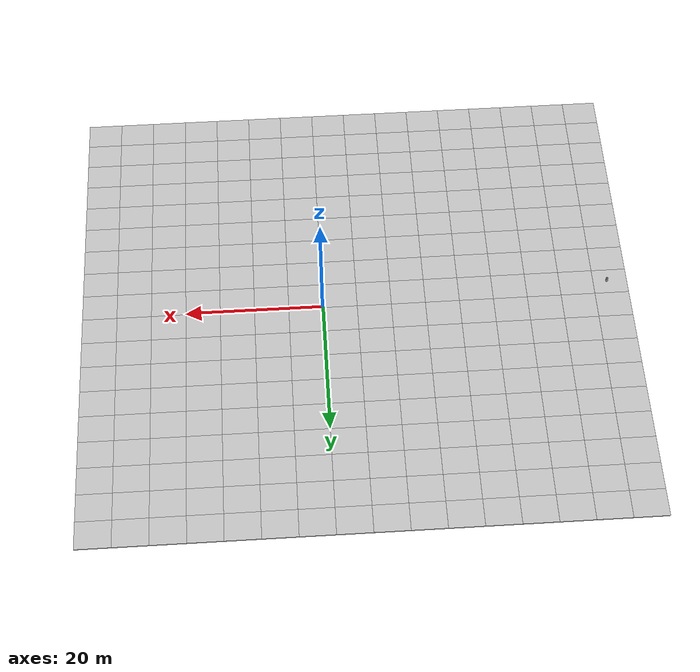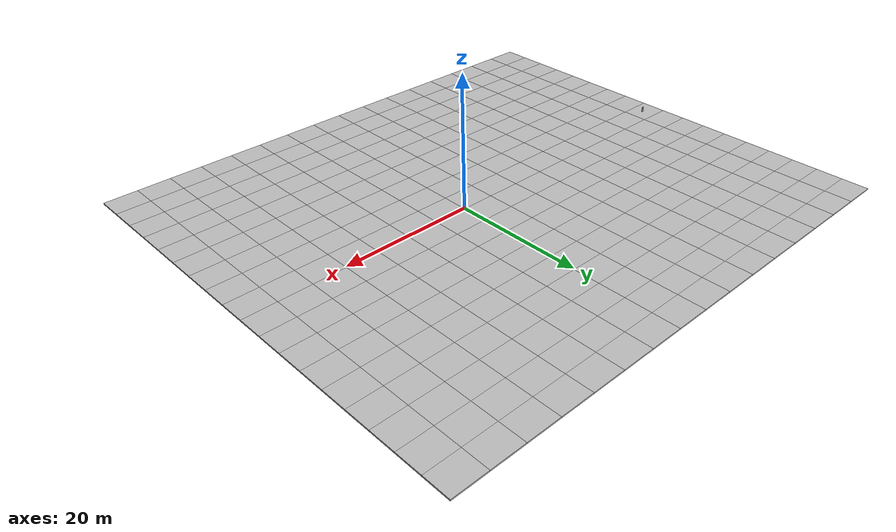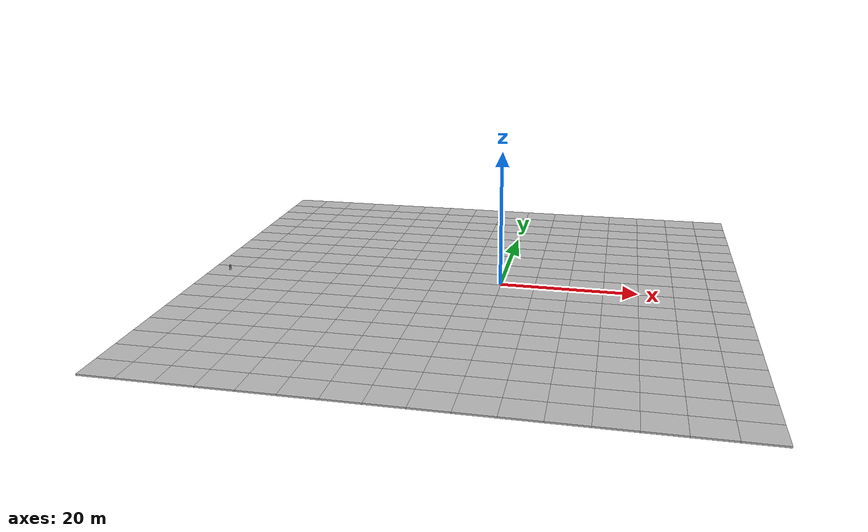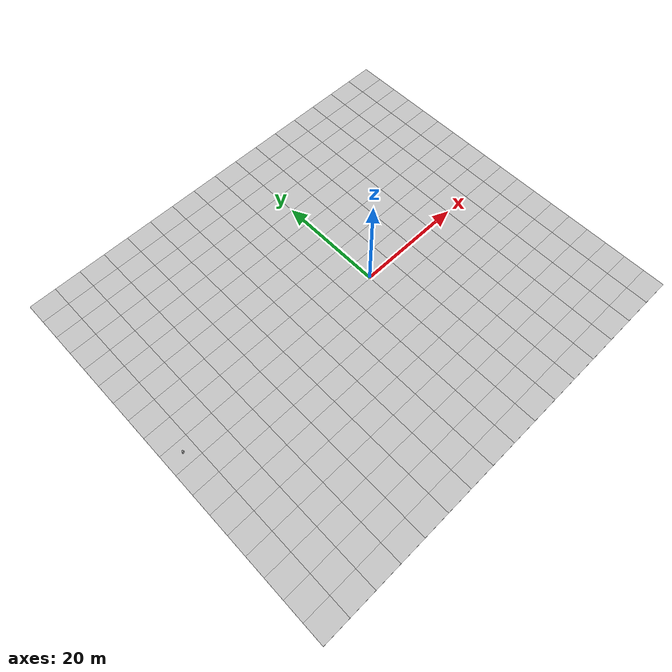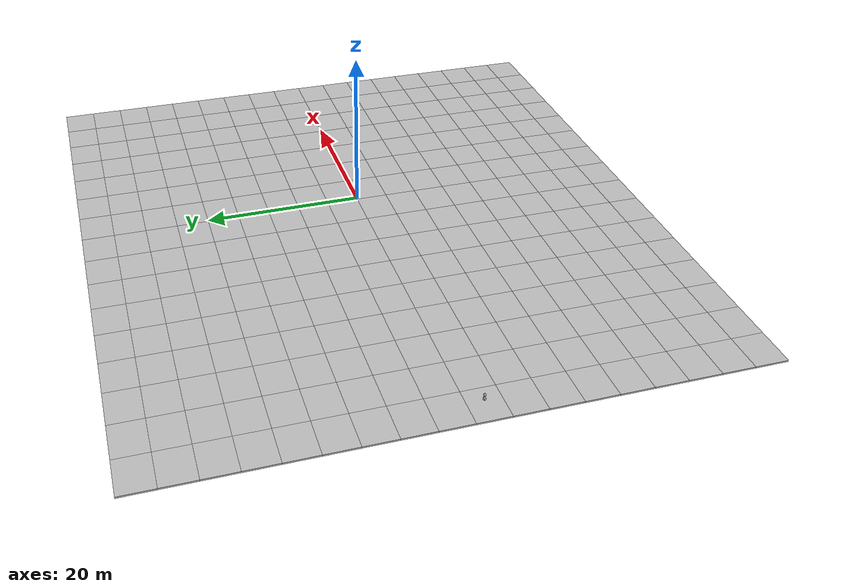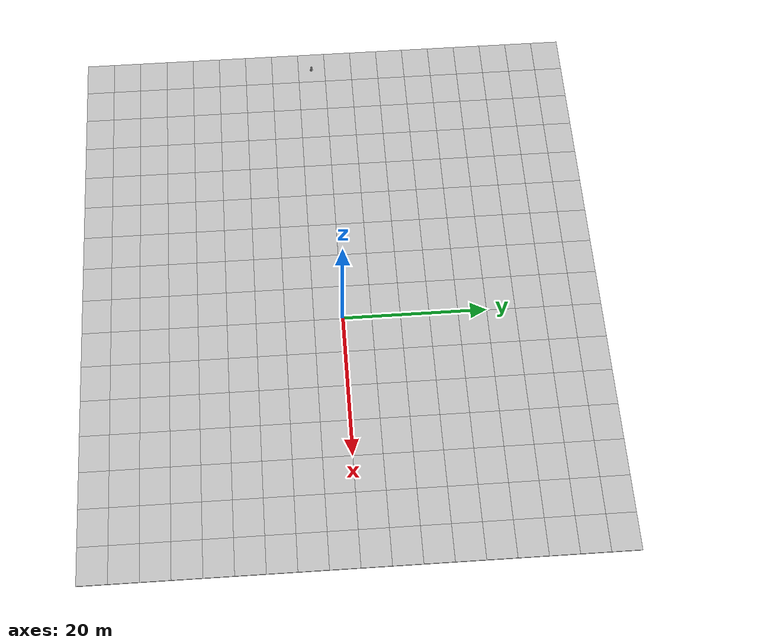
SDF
<sdf version="1.5">
 <world name="default">
  <include><uri>model://sun</uri></include>
  <physics name="default_physics" default="0" type="ode">
   <gravity>0 0 -9.8066</gravity>
   <ode>
    <solver>
     <type>quick</type>
     <iters>10</iters>
     <sor>1.3</sor>
     <use_dynamic_moi_rescaling>0</use_dynamic_moi_rescaling>
    </solver>
    <constraints>
     <cfm>0</cfm>
     <erp>0.2</erp>
     <contact_max_correcting_vel>100</contact_max_correcting_vel>
     <contact_surface_layer>0.001</contact_surface_layer>
    </constraints>
   </ode>
   <max_step_size>0.004</max_step_size>
   <real_time_factor>1</real_time_factor>
   <real_time_update_rate>250</real_time_update_rate>
   <magnetic_field>6.0e-6 2.3e-5 -4.2e-5</magnetic_field>
  </physics>
  <include><name>Oak Tree1</name><uri>model://fire_hydrant</uri><pose>-42 -2 0 0 0 0</pose></include>
  <include><name>soil box0</name><uri>model://mud_box</uri><pose>0 0 -0.2 0 0 1.5708</pose></include>
  <include><name>soil box1</name><uri>model://mud_box</uri><pose>0 8 -0.2 0 0 1.5708</pose></include>
  <include><name>soil box2</name><uri>model://mud_box</uri><pose>0 -8 -0.2 0 0 1.5708</pose></include>
  <include><name>soil box3</name><uri>model://mud_box</uri><pose>-10 0 -0.2 0 0 1.5708</pose></include>
  <include><name>soil box4</name><uri>model://mud_box</uri><pose>-10 8 -0.2 0 0 1.5708</pose></include>
  <include><name>soil box5</name><uri>model://mud_box</uri><pose>-10 -8 -0.2 0 0 1.5708</pose></include>
  <include><name>soil box6</name><uri>model://mud_box</uri><pose>10 -8 -0.2 0 0 1.5708</pose></include>
  <include><name>soil box7</name><uri>model://mud_box</uri><pose>10 0 -0.2 0 0 1.5708</pose></include>
  <include><name>soil box8</name><uri>model://mud_box</uri><pose>10 8 -0.2 0 0 1.5708</pose></include>
  <include><name>soil box9</name><uri>model://mud_box</uri><pose>20 -16 -0.2 0 0 1.5708</pose></include>
  <include><name>soil box10</name><uri>model://mud_box</uri><pose>10 -16 -0.2 0 0 1.5708</pose></include>
  <include><name>soil box11</name><uri>model://mud_box</uri><pose>-10 -16 -0.2 0 0 1.5708</pose></include>
  <include><name>soil box12</name><uri>model://mud_box</uri><pose>-20 -16 -0.2 0 0 1.5708</pose></include>
  <include><name>soil box13</name><uri>model://mud_box</uri><pose>20 16 -0.2 0 0 1.5708</pose></include>
  <include><name>soil box14</name><uri>model://mud_box</uri><pose>10 16 -0.2 0 0 1.5708</pose></include>
  <include><name>soil box15</name><uri>model://mud_box</uri><pose>0 16 -0.2 0 0 1.5708</pose></include>
  <include><name>soil box16</name><uri>model://mud_box</uri><pose>-10 16 -0.2 0 0 1.5708</pose></include>
  <include><name>soil box17</name><uri>model://mud_box</uri><pose>-20 16 -0.2 0 0 1.5708</pose></include>
  <include><name>soil box18</name><uri>model://mud_box</uri><pose>20 -8 -0.2 0 0 1.5708</pose></include>
  <include><name>soil box19</name><uri>model://mud_box</uri><pose>20 0 -0.2 0 0 1.5708</pose></include>
  <include><name>soil box20</name><uri>model://mud_box</uri><pose>20 8 -0.2 0 0 1.5708</pose></include>
  <include><name>soil box21</name><uri>model://mud_box</uri><pose>-20 -8 -0.2 0 0 1.5708</pose></include>
  <include><name>soil box22</name><uri>model://mud_box</uri><pose>-20 0 -0.2 0 0 1.5708</pose></include>
  <include><name>soil box23</name><uri>model://mud_box</uri><pose>-20 8 -0.2 0 0 1.5708</pose></include>
  <include><name>soil box24</name><uri>model://mud_box</uri><pose>0 -16 -0.2 0 0 1.5708</pose></include>
  <include><name>soil box25</name><uri>model://mud_box</uri><pose>30 -24 -0.2 0 0 1.5708</pose></include>
  <include><name>soil box26</name><uri>model://mud_box</uri><pose>30 -16 -0.2 0 0 1.5708</pose></include>
  <include><name>soil box27</name><uri>model://mud_box</uri><pose>30 -8 -0.2 0 0 1.5708</pose></include>
  <include><name>soil box28</name><uri>model://mud_box</uri><pose>30 0 -0.2 0 0 1.5708</pose></include>
  <include><name>soil box29</name><uri>model://mud_box</uri><pose>30 8 -0.2 0 0 1.5708</pose></include>
  <include><name>soil box30</name><uri>model://mud_box</uri><pose>30 16 -0.2 0 0 1.5708</pose></include>
  <include><name>soil box31</name><uri>model://mud_box</uri><pose>30 24 -0.2 0 0 1.5708</pose></include>
  <include><name>soil box32</name><uri>model://mud_box</uri><pose>-30 -24 -0.2 0 0 1.5708</pose></include>
  <include><name>soil box33</name><uri>model://mud_box</uri><pose>-30 -16 -0.2 0 0 1.5708</pose></include>
  <include><name>soil box34</name><uri>model://mud_box</uri><pose>-30 -8 -0.2 0 0 1.5708</pose></include>
  <include><name>soil box35</name><uri>model://mud_box</uri><pose>-30 0 -0.2 0 0 1.5708</pose></include>
  <include><name>soil box36</name><uri>model://mud_box</uri><pose>-30 8 -0.2 0 0 1.5708</pose></include>
  <include><name>soil box37</name><uri>model://mud_box</uri><pose>-30 16 -0.2 0 0 1.5708</pose></include>
  <include><name>soil box38</name><uri>model://mud_box</uri><pose>-30 24 -0.2 0 0 1.5708</pose></include>
  <include><name>soil box39</name><uri>model://mud_box</uri><pose>20 -24 -0.2 0 0 1.5708</pose></include>
  <include><name>soil box40</name><uri>model://mud_box</uri><pose>10 -24 -0.2 0 0 1.5708</pose></include>
  <include><name>soil box41</name><uri>model://mud_box</uri><pose>0 -24 -0.2 0 0 1.5708</pose></include>
  <include><name>soil box42</name><uri>model://mud_box</uri><pose>-10 -24 -0.2 0 0 1.5708</pose></include>
  <include><name>soil box43</name><uri>model://mud_box</uri><pose>-20 -24 -0.2 0 0 1.5708</pose></include>
  <include><name>soil box44</name><uri>model://mud_box</uri><pose>20 24 -0.2 0 0 1.5708</pose></include>
  <include><name>soil box45</name><uri>model://mud_box</uri><pose>10 24 -0.2 0 0 1.5708</pose></include>
  <include><name>soil box46</name><uri>model://mud_box</uri><pose>0 24 -0.2 0 0 1.5708</pose></include>
  <include><name>soil box47</name><uri>model://mud_box</uri><pose>-10 24 -0.2 0 0 1.5708</pose></include>
  <include><name>soil box48</name><uri>model://mud_box</uri><pose>-20 24 -0.2 0 0 1.5708</pose></include>
  <include><name>soil box49</name><uri>model://mud_box</uri><pose>-30 -32 -0.2 0 0 1.5708</pose></include>
  <include><name>soil box50</name><uri>model://mud_box</uri><pose>-20 -32 -0.2 0 0 1.5708</pose></include>
  <include><name>soil box51</name><uri>model://mud_box</uri><pose>-10 -32 -0.2 0 0 1.5708</pose></include>
  <include><name>soil box52</name><uri>model://mud_box</uri><pose>0 -32 -0.2 0 0 1.5708</pose></include>
  <include><name>soil box53</name><uri>model://mud_box</uri><pose>10 -32 -0.2 0 0 1.5708</pose></include>
  <include><name>soil box54</name><uri>model://mud_box</uri><pose>20 -32 -0.2 0 0 1.5708</pose></include>
  <include><name>soil box55</name><uri>model://mud_box</uri><pose>30 -32 -0.2 0 0 1.5708</pose></include>
  <include><name>soil box56</name><uri>model://mud_box</uri><pose>-30 32 -0.2 0 0 1.5708</pose></include>
  <include><name>soil box57</name><uri>model://mud_box</uri><pose>-20 32 -0.2 0 0 1.5708</pose></include>
  <include><name>soil box58</name><uri>model://mud_box</uri><pose>-10 32 -0.2 0 0 1.5708</pose></include>
  <include><name>soil box59</name><uri>model://mud_box</uri><pose>0 32 -0.2 0 0 1.5708</pose></include>
  <include><name>soil box60</name><uri>model://mud_box</uri><pose>10 32 -0.2 0 0 1.5708</pose></include>
  <include><name>soil box61</name><uri>model://mud_box</uri><pose>20 32 -0.2 0 0 1.5708</pose></include>
  <include><name>soil box62</name><uri>model://mud_box</uri><pose>30 32 -0.2 0 0 1.5708</pose></include>
  <include><name>soil box63</name><uri>model://mud_box</uri><pose>-40 -32 -0.2 0 0 1.5708</pose></include>
  <include><name>soil box64</name><uri>model://mud_box</uri><pose>-40 -24 -0.2 0 0 1.5708</pose></include>
  <include><name>soil box65</name><uri>model://mud_box</uri><pose>-40 -16 -0.2 0 0 1.5708</pose></include>
  <include><name>soil box66</name><uri>model://mud_box</uri><pose>-40 -8 -0.2 0 0 1.5708</pose></include>
  <include><name>soil box67</name><uri>model://mud_box</uri><pose>-40 0 -0.2 0 0 1.5708</pose></include>
  <include><name>soil box68</name><uri>model://mud_box</uri><pose>-40 8 -0.2 0 0 1.5708</pose></include>
  <include><name>soil box69</name><uri>model://mud_box</uri><pose>-40 16 -0.2 0 0 1.5708</pose></include>
  <include><name>soil box70</name><uri>model://mud_box</uri><pose>-40 24 -0.2 0 0 1.5708</pose></include>
  <include><name>soil box71</name><uri>model://mud_box</uri><pose>-40 32 -0.2 0 0 1.5708</pose></include>
 </world>
</sdf>

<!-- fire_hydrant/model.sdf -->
<sdf version="1.5">
  <model name="fire_hydrant">
    <static>true</static>
    <link name="link">
      <collision name="collision">
        <geometry>
          <mesh>
            <uri>file://isr-testbed/fire_hydrant/meshes/fire_hydrant.dae</uri>
          </mesh>
        </geometry>
      </collision>
      <visual name="visual">
        <geometry>
          <mesh>
            <uri>file://isr-testbed/fire_hydrant/meshes/fire_hydrant.dae</uri>
          </mesh>
        </geometry>
      </visual>
    </link>
  </model>
</sdf>

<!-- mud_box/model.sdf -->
<sdf version="1.5">
  <model name="mud_box">
    <static>true</static>
    <link name="link">
      <collision name="collision">
        <geometry>
          <box>
            <size>8 10 0.2</size>
          </box>
        </geometry>
      </collision>
      <visual name="visual_1">
        <pose>-2 2.5 0 0 0 0</pose>
        <cast_shadows>false</cast_shadows>
        <geometry>
          <box>
            <size>4 5 0.2</size>
          </box>
        </geometry>
        <material>
          <script>
            <uri>model://../model_source/models/mud_box/materials/scripts</uri>
            <uri>model://../model_source/models/mud_box/materials/textures</uri>
            <name>vrc/mud</name>
          </script>
        </material>
      </visual>
      <visual name="visual_2">
        <pose>2 2.5 0 0 0 0</pose>
        <cast_shadows>false</cast_shadows>
        <geometry>
          <box>
            <size>4 5 0.2</size>
          </box>
        </geometry>
        <material>
          <script>
            <uri>model://../model_source/models/mud_box/materials/scripts</uri>
            <uri>model://../model_source/models/mud_box/materials/textures</uri>
            <name>vrc/mud</name>
          </script>
        </material>
      </visual>
      <visual name="visual_3">
        <pose>2 -2.5 0 0 0 0</pose>
        <cast_shadows>false</cast_shadows>
        <geometry>
          <box>
            <size>4 5 0.2</size>
          </box>
        </geometry>
        <material>
          <script>
            <uri>model://../model_source/models/mud_box/materials/scripts</uri>
            <uri>model://../model_source/models/mud_box/materials/textures</uri>
            <name>vrc/mud</name>
          </script>
        </material>
      </visual>
      <visual name="visual_4">
        <pose>-2 -2.5 0 0 0 0</pose>
        <cast_shadows>false</cast_shadows>
        <geometry>
          <box>
            <size>4 5 0.2</size>
          </box>
        </geometry>
        <material>
          <script>
            <uri>model://../model_source/models/mud_box/materials/scripts</uri>
            <uri>model://../model_source/models/mud_box/materials/textures</uri>
            <name>vrc/mud</name>
          </script>
        </material>
      </visual>
    </link>
  </model>
</sdf>
